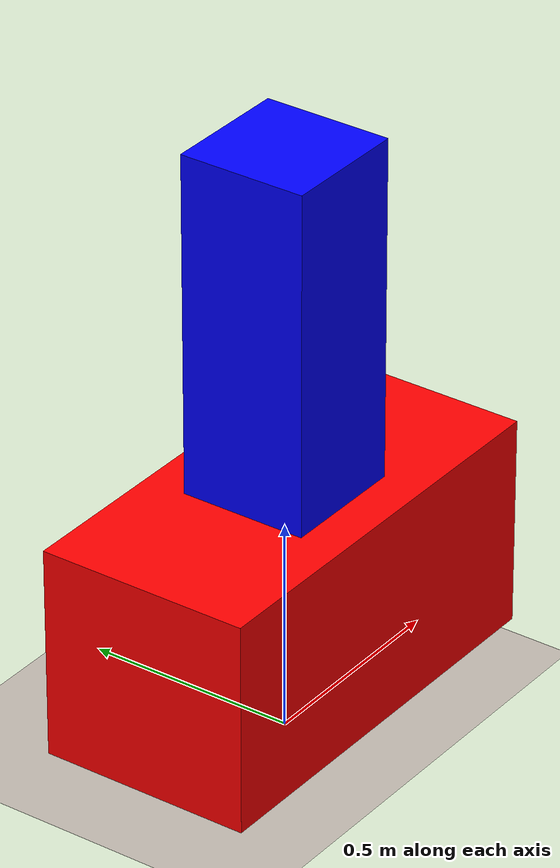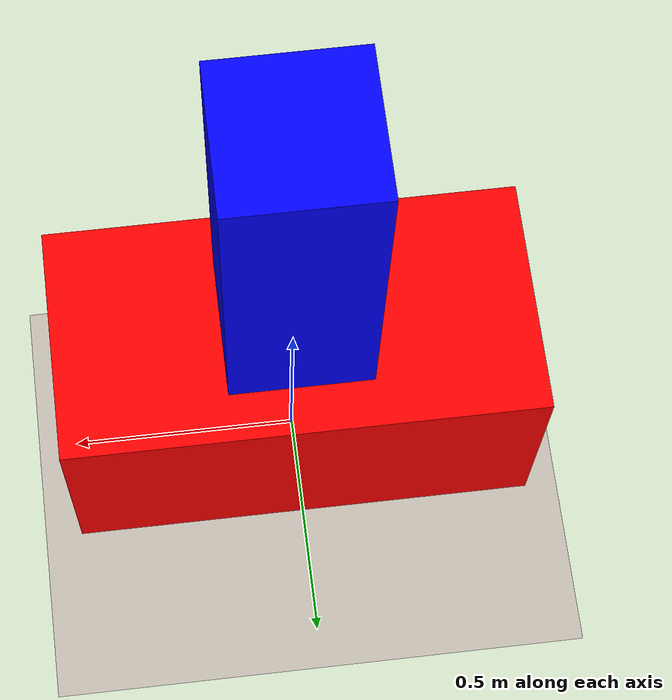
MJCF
<mujoco>
  <include file="./common/materials.xml"/>
  <option timestep="0.01"/>
  <statistic center="0 0 0" extent="1.5"/>
  <worldbody>
    <light name="light" pos="0 0 3" directional = "true"/>
    <camera name="fixed" pos="0 -3 2" xyaxes="1 0 0 0 0.2 0.8"/>
    <camera name="track" pos="5 0 0.8"  mode="targetbody" target="base"/>
    <geom name="floor" size="0 0 0.01" type="plane" material="motphys-ground" contype="1" conaffinity="0" priority="1"
        friction="0.6" condim="3"/>

    <body name="base" pos="0 0 0.1">
      <body name="slot" pos="0 0 0">
        <joint name="slider" type="slide" axis="1 0 0" limited="true" range = "-2 2"/>
        <geom name="cube_A" type="box" size="0.5 0.25 0.25" pos="0 0 0.25" rgba="1 0 0 1"/>

        <body name="bar" pos="0 0 0.5">
          <light name="front light" pos=".1 0 .02" dir="0 2 -1" diffuse="1 1 1" cutoff="30"/>

          <joint name="ball" type="ball" limited="true" range = "0 20"/>
          <geom name="bar" type="box" size="0.15 0.15 0.4" pos="0 0 0.4" rgba="0 0 1 1" group="1"/>
        </body>
      </body>
    </body>
  </worldbody>

  <actuator>
    <motor name="actuator_slider" joint="slider" gear="500"/>
  </actuator>
</mujoco>

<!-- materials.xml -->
<!--
Common textures, colors and materials to be used throughout this suite. Some
materials such as xxx_highlight are activated on occurence of certain events,
for example receiving a positive reward.
-->
<mujoco>
  <asset>
    <texture name="motphys-ground" type="2d" file="motphys-ground.png" />
    <material name="motphys-ground" texture="motphys-ground" texuniform="true"
      texrepeat="0.4 0.4" />
  </asset>
</mujoco>
